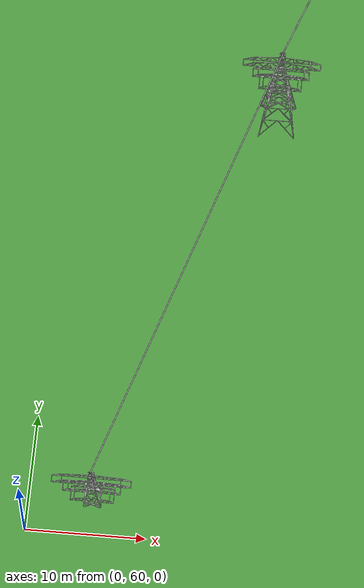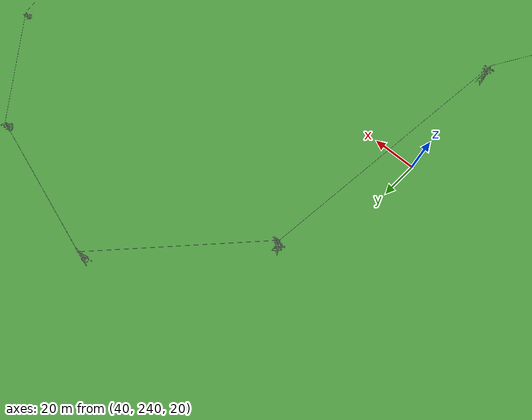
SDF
<sdf version="1.6">
 <world name="default">
  <physics type="ode">
   <ode>
    <solver><type>quick</type><iters>100</iters><sor>1.0</sor></solver>
    <constraints>
     <cfm>0.0</cfm>
     <erp>0.2</erp>
     <contact_max_correcting_vel>0.1</contact_max_correcting_vel>
     <contact_surface_layer>0.0</contact_surface_layer>
    </constraints>
   </ode>
   <real_time_update_rate>-1</real_time_update_rate>
  </physics>
  <gravity>0 0 -9.8</gravity>
  <include><uri>model://sun</uri></include>
  <model name="ground_plane">
   <static>true</static>
   <link name="link">
    <collision name="collision">
     <geometry><plane><normal>0 0 1</normal><size>5 5</size></plane></geometry>
     <surface><friction><ode><mu>100</mu><mu2>50</mu2></ode></friction></surface>
    </collision>
    <visual name="grass">
     <cast_shadows>false</cast_shadows>
     <geometry><plane><normal>0 0 1</normal><size>5 5</size></plane></geometry>
     <material>
      <script><uri>file://media/materials/scripts/gazebo.material</uri><name>Gazebo/Grass</name></script>
     </material>
    </visual>
   </link>
   <pose>0 0 6 0 0 0</pose>
  </model>
  <model name="torre_1">
   <include><uri>model://torrona</uri><pose>4.23252 59.6332 0 0 -0 0</pose></include>
  </model>
  <model name="torre_2">
   <include><uri>model://torrona</uri><pose>16.611 93.7986 8.23703 0 -0 0</pose></include>
  </model>
  <model name="torre_3">
   <include><uri>model://torrona</uri><pose>45.065 167.192 17.4338 0 -0 0</pose></include>
  </model>
  <model name="torre_4">
   <include><uri>model://torrona</uri><pose>53.7558 311.953 18.269 0 -0 0</pose></include>
  </model>
  <model name="torre_5">
   <include><uri>model://torrona</uri><pose>105.613 371.682 14.3516 0 -0 0</pose></include>
  </model>
  <model name="torre_6">
   <include><uri>model://torrona</uri><pose>200 360.784 0 0 -0 0.949565</pose></include>
  </model>
  <model name="torre_7">
   <include><uri>model://torrona</uri><pose>270 310.103 -1.49265 0 -0 0.758788</pose></include>
  </model>
  <model name="torre_8">
   <include><uri>model://torrona</uri><pose>315.671 173.776 17.5701 0 -0 0.736076</pose></include>
  </model>
  <model name="torre_9">
   <include><uri>model://torrona</uri><pose>313.757 25.5239 0 0 -0 0</pose></include>
  </model>
  <model name="cabo_1">
   <pose>11.8808 78.2072 16.2192 0 -1.35 -1.92</pose>
   <static>1</static>
   <link name="link">
    <visual name="visual">
     <geometry><cylinder><radius>0.05</radius><length>37.32</length></cylinder></geometry>
     <material>
      <script><name>Gazebo/Grey</name><uri>file://media/materials/scripts/gazebo.material</uri></script>
     </material>
    </visual>
    <collision name="collision">
     <geometry><cylinder><radius>0.05</radius><length>37.32</length></cylinder></geometry>
    </collision>
   </link>
  </model>
  <model name="cabo_2">
   <pose>32.30315 131.97385 24.9399 0 -1.453 -1.941</pose>
   <static>1</static>
   <link name="link">
    <visual name="visual">
     <geometry><cylinder><radius>0.05</radius><length>79.15</length></cylinder></geometry>
     <material>
      <script><name>Gazebo/Grey</name><uri>file://media/materials/scripts/gazebo.material</uri></script>
     </material>
    </visual>
    <collision name="collision">
     <geometry><cylinder><radius>0.05</radius><length>79.15</length></cylinder></geometry>
    </collision>
   </link>
  </model>
  <model name="cabo_3">
   <pose>50.86955 241.0404 30.016 0 -1.577 -4.772</pose>
   <static>1</static>
   <link name="link">
    <visual name="visual">
     <geometry><cylinder><radius>0.05</radius><length>145.113</length></cylinder></geometry>
     <material>
      <script><name>Gazebo/Grey</name><uri>file://media/materials/scripts/gazebo.material</uri></script>
     </material>
    </visual>
    <collision name="collision">
     <geometry><cylinder><radius>0.05</radius><length>145.113</length></cylinder></geometry>
    </collision>
   </link>
  </model>
  <model name="cabo_4">
   <pose>81.14825 343.3108 28.49475 0 -1.62 -2.286</pose>
   <static>1</static>
   <link name="link">
    <visual name="visual">
     <geometry><cylinder><radius>0.05</radius><length>79.17</length></cylinder></geometry>
     <material>
      <script><name>Gazebo/Grey</name><uri>file://media/materials/scripts/gazebo.material</uri></script>
     </material>
    </visual>
    <collision name="collision">
     <geometry><cylinder><radius>0.05</radius><length>79.17</length></cylinder></geometry>
    </collision>
   </link>
  </model>
  <model name="cabo_5">
   <pose>153.3954 367.9549  19.4109 0 -1.72271 -3.25343</pose>
   <static>1</static>
   <link name="link">
    <visual name="visual">
     <geometry><cylinder><radius>0.05</radius><length>94.287</length></cylinder></geometry>
     <material>
      <script><name>Gazebo/Grey</name><uri>file://media/materials/scripts/gazebo.material</uri></script>
     </material>
    </visual>
    <collision name="collision">
     <geometry><cylinder><radius>0.05</radius><length>94.287</length></cylinder></geometry>
    </collision>
   </link>
  </model>
  <model name="cabo_6">
   <pose>234.8564 337.4662  11.5232 0 -1.5881 -3.7652</pose>
   <static>1</static>
   <link name="link">
    <visual name="visual">
     <geometry><cylinder><radius>0.05</radius><length>86.61</length></cylinder></geometry>
     <material>
      <script><name>Gazebo/Grey</name><uri>file://media/materials/scripts/gazebo.material</uri></script>
     </material>
    </visual>
    <collision name="collision">
     <geometry><cylinder><radius>0.05</radius><length>86.61</length></cylinder></geometry>
    </collision>
   </link>
  </model>
  <model name="cabo_7">
   <pose>292.87775 244.02295  20.2584  0 -1.4395 -4.3886</pose>
   <static>1</static>
   <link name="link">
    <visual name="visual">
     <geometry><cylinder><radius>0.05</radius><length>145.027</length></cylinder></geometry>
     <material>
      <script><name>Gazebo/Grey</name><uri>file://media/materials/scripts/gazebo.material</uri></script>
     </material>
    </visual>
    <collision name="collision">
     <geometry><cylinder><radius>0.05</radius><length>145.027</length></cylinder></geometry>
    </collision>
   </link>
  </model>
  <model name="cabo_8">
   <pose>315.48185 101.435 20.94425  0 -1.688 -4.715</pose>
   <static>1</static>
   <link name="link">
    <visual name="visual">
     <geometry><cylinder><radius>0.05</radius><length>149.90</length></cylinder></geometry>
     <material>
      <script><name>Gazebo/Grey</name><uri>file://media/materials/scripts/gazebo.material</uri></script>
     </material>
    </visual>
    <collision name="collision">
     <geometry><cylinder><radius>0.05</radius><length>149.90</length></cylinder></geometry>
    </collision>
   </link>
  </model>
 </world>
</sdf>

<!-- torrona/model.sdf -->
<sdf version="1.6">
  <model name="torrona">
    <static>true</static>
    <link name="link">
      <collision name="collision">
        <geometry>
          <mesh>
            <scale>0.1 0.1 0.1</scale>
            <uri>model://torrona/meshes/torrona.stl</uri>
          </mesh>
        </geometry>
      </collision>

      <visual name="visual">
        <geometry>
          <mesh>
            <scale>0.1 0.1 0.1</scale>
            <uri>model://torrona/meshes/torrona.stl</uri>
          </mesh>
        </geometry>
      </visual>
    </link>
  </model>
</sdf>
